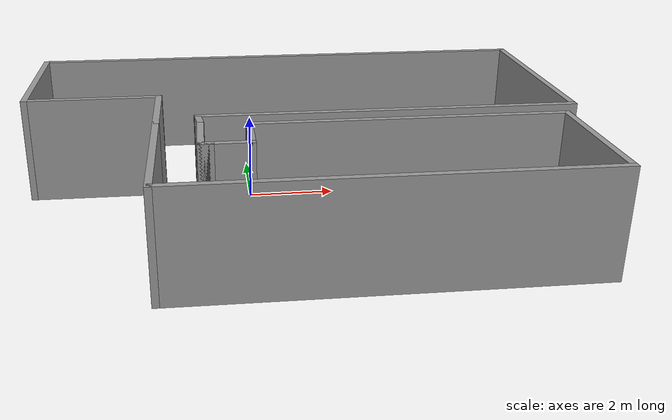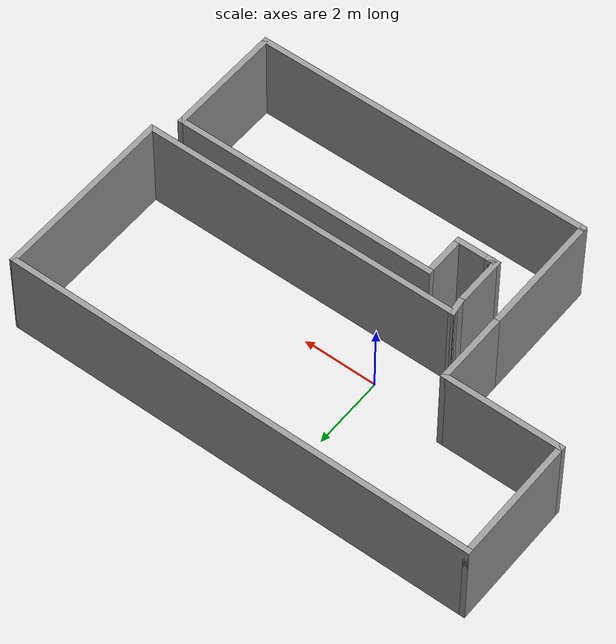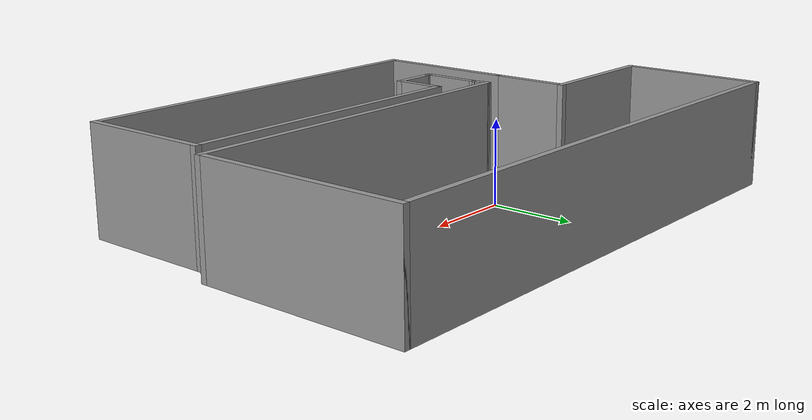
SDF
<?xml version='1.0'?>
<sdf version='1.7'>
  <model name='thin_wall_3'>
    <pose>1.09 -0.605 0 0 -0 0</pose>
    <link name='Wall_0'>
      <collision name='Wall_0_Collision'>
        <geometry>
          <box>
            <size>3.5 0.15 2.5</size>
          </box>
        </geometry>
        <pose>0 0 1.25 0 -0 0</pose>
      </collision>
      <visual name='Wall_0_Visual'>
        <pose>0 0 1.25 0 -0 0</pose>
        <geometry>
          <box>
            <size>3.5 0.15 2.5</size>
          </box>
        </geometry>
        <material>
          <script>
            <uri>file://media/materials/scripts/gazebo.material</uri>
            <name>Gazebo/Grey</name>
          </script>
          <ambient>1 1 1 1</ambient>
        </material>
        <meta>
          <layer>0</layer>
        </meta>
      </visual>
      <pose>-3.2 -2.6 0 0 -0 -1.5708</pose>
    </link>
    <link name='Wall_1'>
      <collision name='Wall_1_Collision'>
        <geometry>
          <box>
            <size>9.25 0.15 2.5</size>
          </box>
        </geometry>
        <pose>0 0 1.25 0 -0 0</pose>
      </collision>
      <visual name='Wall_1_Visual'>
        <pose>0 0 1.25 0 -0 0</pose>
        <geometry>
          <box>
            <size>9.25 0.15 2.5</size>
          </box>
        </geometry>
        <material>
          <script>
            <uri>file://media/materials/scripts/gazebo.material</uri>
            <name>Gazebo/Grey</name>
          </script>
          <ambient>1 1 1 1</ambient>
        </material>
        <meta>
          <layer>0</layer>
        </meta>
      </visual>
      <pose>1.35 -4.275 0 0 -0 0</pose>
    </link>
    <link name='Wall_10'>
      <collision name='Wall_10_Collision'>
        <geometry>
          <box>
            <size>0.25 0.15 2.5</size>
          </box>
        </geometry>
        <pose>0 0 1.25 0 -0 0</pose>
      </collision>
      <visual name='Wall_10_Visual'>
        <pose>0 0 1.25 0 -0 0</pose>
        <geometry>
          <box>
            <size>0.25 0.15 2.5</size>
          </box>
        </geometry>
        <material>
          <script>
            <uri>file://media/materials/scripts/gazebo.material</uri>
            <name>Gazebo/Grey</name>
          </script>
          <ambient>1 1 1 1</ambient>
        </material>
        <meta>
          <layer>0</layer>
        </meta>
      </visual>
      <pose>-2.2 -2.275 0 0 -0 3.14159</pose>
    </link>
    <link name='Wall_11'>
      <collision name='Wall_11_Collision'>
        <geometry>
          <box>
            <size>1.5 0.15 2.5</size>
          </box>
        </geometry>
        <pose>0 0 1.25 0 -0 0</pose>
      </collision>
      <visual name='Wall_11_Visual'>
        <pose>0 0 1.25 0 -0 0</pose>
        <geometry>
          <box>
            <size>1.5 0.15 2.5</size>
          </box>
        </geometry>
        <material>
          <script>
            <uri>file://media/materials/scripts/gazebo.material</uri>
            <name>Gazebo/Grey</name>
          </script>
          <ambient>1 1 1 1</ambient>
        </material>
        <meta>
          <layer>0</layer>
        </meta>
      </visual>
      <pose>-2.25 -1.6 0 0 -0 1.5708</pose>
    </link>
    <link name='Wall_13'>
      <collision name='Wall_13_Collision'>
        <geometry>
          <box>
            <size>2 0.15 2.5</size>
          </box>
        </geometry>
        <pose>0 0 1.25 0 -0 0</pose>
      </collision>
      <visual name='Wall_13_Visual'>
        <pose>0 0 1.25 0 -0 0</pose>
        <geometry>
          <box>
            <size>2 0.15 2.5</size>
          </box>
        </geometry>
        <material>
          <script>
            <uri>file://media/materials/scripts/gazebo.material</uri>
            <name>Gazebo/Grey</name>
          </script>
          <ambient>1 1 1 1</ambient>
        </material>
        <meta>
          <layer>0</layer>
        </meta>
      </visual>
      <pose>-3.2 -0 0 0 -0 1.5708</pose>
    </link>
    <link name='Wall_14'>
      <collision name='Wall_14_Collision'>
        <geometry>
          <box>
            <size>3.25 0.15 2.5</size>
          </box>
        </geometry>
        <pose>0 0 1.25 0 -0 0</pose>
      </collision>
      <visual name='Wall_14_Visual'>
        <pose>0 0 1.25 0 -0 0</pose>
        <geometry>
          <box>
            <size>3.25 0.15 2.5</size>
          </box>
        </geometry>
        <material>
          <script>
            <uri>file://media/materials/scripts/gazebo.material</uri>
            <name>Gazebo/Grey</name>
          </script>
          <ambient>1 1 1 1</ambient>
        </material>
        <meta>
          <layer>0</layer>
        </meta>
      </visual>
      <pose>-4.75 0.925 0 0 -0 3.14159</pose>
    </link>
    <link name='Wall_16'>
      <collision name='Wall_16_Collision'>
        <geometry>
          <box>
            <size>3.5 0.15 2.5</size>
          </box>
        </geometry>
        <pose>0 0 1.25 0 -0 0</pose>
      </collision>
      <visual name='Wall_16_Visual'>
        <pose>0 0 1.25 0 -0 0</pose>
        <geometry>
          <box>
            <size>3.5 0.15 2.5</size>
          </box>
        </geometry>
        <material>
          <script>
            <uri>file://media/materials/scripts/gazebo.material</uri>
            <name>Gazebo/Grey</name>
          </script>
          <ambient>1 1 1 1</ambient>
        </material>
        <meta>
          <layer>0</layer>
        </meta>
      </visual>
      <pose>-6.3 2.6 0 0 -0 1.5708</pose>
    </link>
    <link name='Wall_17'>
      <collision name='Wall_17_Collision'>
        <geometry>
          <box>
            <size>12.75 0.15 2.5</size>
          </box>
        </geometry>
        <pose>0 0 1.25 0 -0 0</pose>
      </collision>
      <visual name='Wall_17_Visual'>
        <pose>0 0 1.25 0 -0 0</pose>
        <geometry>
          <box>
            <size>12.75 0.15 2.5</size>
          </box>
        </geometry>
        <material>
          <script>
            <uri>file://media/materials/scripts/gazebo.material</uri>
            <name>Gazebo/Grey</name>
          </script>
          <ambient>1 1 1 1</ambient>
        </material>
        <meta>
          <layer>0</layer>
        </meta>
      </visual>
      <pose>0 4.275 0 0 -0 0</pose>
    </link>
    <link name='Wall_18'>
      <collision name='Wall_18_Collision'>
        <geometry>
          <box>
            <size>5 0.15 2.5</size>
          </box>
        </geometry>
        <pose>0 0 1.25 0 -0 0</pose>
      </collision>
      <visual name='Wall_18_Visual'>
        <pose>0 0 1.25 0 -0 0</pose>
        <geometry>
          <box>
            <size>5 0.15 2.5</size>
          </box>
        </geometry>
        <material>
          <script>
            <uri>file://media/materials/scripts/gazebo.material</uri>
            <name>Gazebo/Grey</name>
          </script>
          <ambient>1 1 1 1</ambient>
        </material>
        <meta>
          <layer>0</layer>
        </meta>
      </visual>
      <pose>6.3 1.85 0 0 -0 -1.5708</pose>
    </link>
    <link name='Wall_19'>
      <collision name='Wall_19_Collision'>
        <geometry>
          <box>
            <size>8.75 0.15 2.5</size>
          </box>
        </geometry>
        <pose>0 0 1.25 0 -0 0</pose>
      </collision>
      <visual name='Wall_19_Visual'>
        <pose>0 0 1.25 0 -0 0</pose>
        <geometry>
          <box>
            <size>8.75 0.15 2.5</size>
          </box>
        </geometry>
        <material>
          <script>
            <uri>file://media/materials/scripts/gazebo.material</uri>
            <name>Gazebo/Grey</name>
          </script>
          <ambient>1 1 1 1</ambient>
        </material>
        <meta>
          <layer>0</layer>
        </meta>
      </visual>
      <pose>2 -0.575 0 0 -0 3.14159</pose>
    </link>
    <link name='Wall_2'>
      <collision name='Wall_2_Collision'>
        <geometry>
          <box>
            <size>3.25 0.15 2.5</size>
          </box>
        </geometry>
        <pose>0 0 1.25 0 -0 0</pose>
      </collision>
      <visual name='Wall_2_Visual'>
        <pose>0 0 1.25 0 -0 0</pose>
        <geometry>
          <box>
            <size>3.25 0.15 2.5</size>
          </box>
        </geometry>
        <material>
          <script>
            <uri>file://media/materials/scripts/gazebo.material</uri>
            <name>Gazebo/Grey</name>
          </script>
          <ambient>1 1 1 1</ambient>
        </material>
        <meta>
          <layer>0</layer>
        </meta>
      </visual>
      <pose>5.9 -2.725 0 0 -0 1.5708</pose>
    </link>
    <link name='Wall_20'>
      <collision name='Wall_20_Collision'>
        <geometry>
          <box>
            <size>0.503553 0.15 2.5</size>
          </box>
        </geometry>
        <pose>0 0 1.25 0 -0 0</pose>
      </collision>
      <visual name='Wall_20_Visual'>
        <pose>0 0 1.25 0 -0 0</pose>
        <geometry>
          <box>
            <size>0.503553 0.15 2.5</size>
          </box>
        </geometry>
        <material>
          <script>
            <uri>file://media/materials/scripts/gazebo.material</uri>
            <name>Gazebo/Grey</name>
          </script>
          <ambient>1 1 1 1</ambient>
        </material>
        <meta>
          <layer>0</layer>
        </meta>
      </visual>
      <pose>-2.275 -0.75 0 0 -0 -1.4289</pose>
    </link>
    <link name='Wall_3'>
      <collision name='Wall_3_Collision'>
        <geometry>
          <box>
            <size>7.25 0.15 2.5</size>
          </box>
        </geometry>
        <pose>0 0 1.25 0 -0 0</pose>
      </collision>
      <visual name='Wall_3_Visual'>
        <pose>0 0 1.25 0 -0 0</pose>
        <geometry>
          <box>
            <size>7.25 0.15 2.5</size>
          </box>
        </geometry>
        <material>
          <script>
            <uri>file://media/materials/scripts/gazebo.material</uri>
            <name>Gazebo/Grey</name>
          </script>
          <ambient>1 1 1 1</ambient>
        </material>
        <meta>
          <layer>0</layer>
        </meta>
      </visual>
      <pose>2.35 -1.175 0 0 -0 3.14159</pose>
    </link>
    <link name='Wall_4'>
      <collision name='Wall_4_Collision'>
        <geometry>
          <box>
            <size>1.25 0.15 2.5</size>
          </box>
        </geometry>
        <pose>0 0 1.25 0 -0 0</pose>
      </collision>
      <visual name='Wall_4_Visual'>
        <pose>0 0 1.25 0 -0 0</pose>
        <geometry>
          <box>
            <size>1.25 0.15 2.5</size>
          </box>
        </geometry>
        <material>
          <script>
            <uri>file://media/materials/scripts/gazebo.material</uri>
            <name>Gazebo/Grey</name>
          </script>
          <ambient>1 1 1 1</ambient>
        </material>
        <meta>
          <layer>0</layer>
        </meta>
      </visual>
      <pose>-1.2 -1.725 0 0 -0 -1.5708</pose>
    </link>
    <link name='Wall_5'>
      <collision name='Wall_5_Collision'>
        <geometry>
          <box>
            <size>1 0.15 2.5</size>
          </box>
        </geometry>
        <pose>0 0 1.25 0 -0 0</pose>
      </collision>
      <visual name='Wall_5_Visual'>
        <pose>0 0 1.25 0 -0 0</pose>
        <geometry>
          <box>
            <size>1 0.15 2.5</size>
          </box>
        </geometry>
        <material>
          <script>
            <uri>file://media/materials/scripts/gazebo.material</uri>
            <name>Gazebo/Grey</name>
          </script>
          <ambient>1 1 1 1</ambient>
        </material>
        <meta>
          <layer>0</layer>
        </meta>
      </visual>
      <pose>-1.625 -2.275 0 0 -0 3.14159</pose>
    </link>
    <link name='Wall_7'>
      <collision name='Wall_7_Collision'>
        <geometry>
          <box>
            <size>0.25 0.15 2.5</size>
          </box>
        </geometry>
        <pose>0 0 1.25 0 -0 0</pose>
      </collision>
      <visual name='Wall_7_Visual'>
        <pose>0 0 1.25 0 -0 0</pose>
        <geometry>
          <box>
            <size>0.25 0.15 2.5</size>
          </box>
        </geometry>
        <material>
          <script>
            <uri>file://media/materials/scripts/gazebo.material</uri>
            <name>Gazebo/Grey</name>
          </script>
          <ambient>1 1 1 1</ambient>
        </material>
        <meta>
          <layer>0</layer>
        </meta>
      </visual>
      <pose>-2.1 -2.275 0 0 -0 3.14159</pose>
    </link>
    <link name='Wall_9'>
      <collision name='Wall_9_Collision'>
        <geometry>
          <box>
            <size>0.25 0.15 2.5</size>
          </box>
        </geometry>
        <pose>0 0 1.25 0 -0 0</pose>
      </collision>
      <visual name='Wall_9_Visual'>
        <pose>0 0 1.25 0 -0 0</pose>
        <geometry>
          <box>
            <size>0.25 0.15 2.5</size>
          </box>
        </geometry>
        <material>
          <script>
            <uri>file://media/materials/scripts/gazebo.material</uri>
            <name>Gazebo/Grey</name>
          </script>
          <ambient>1 1 1 1</ambient>
        </material>
        <meta>
          <layer>0</layer>
        </meta>
      </visual>
      <pose>-2.1 -2.275 0 0 -0 3.14159</pose>
    </link>
    <static>1</static>
  </model>
</sdf>
